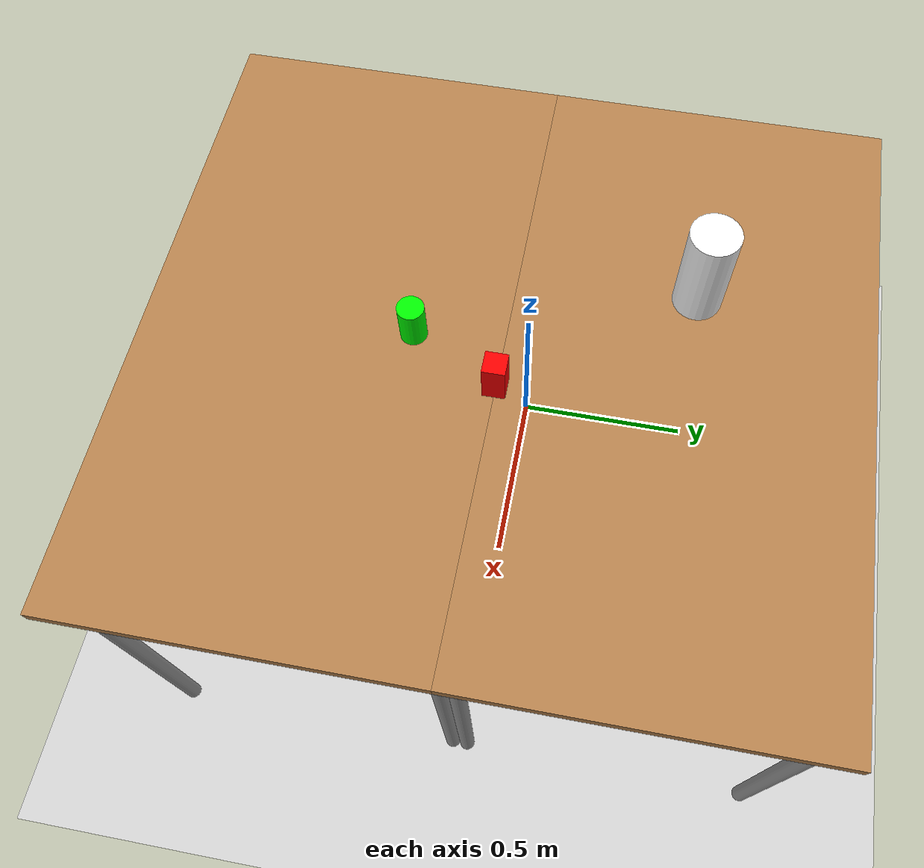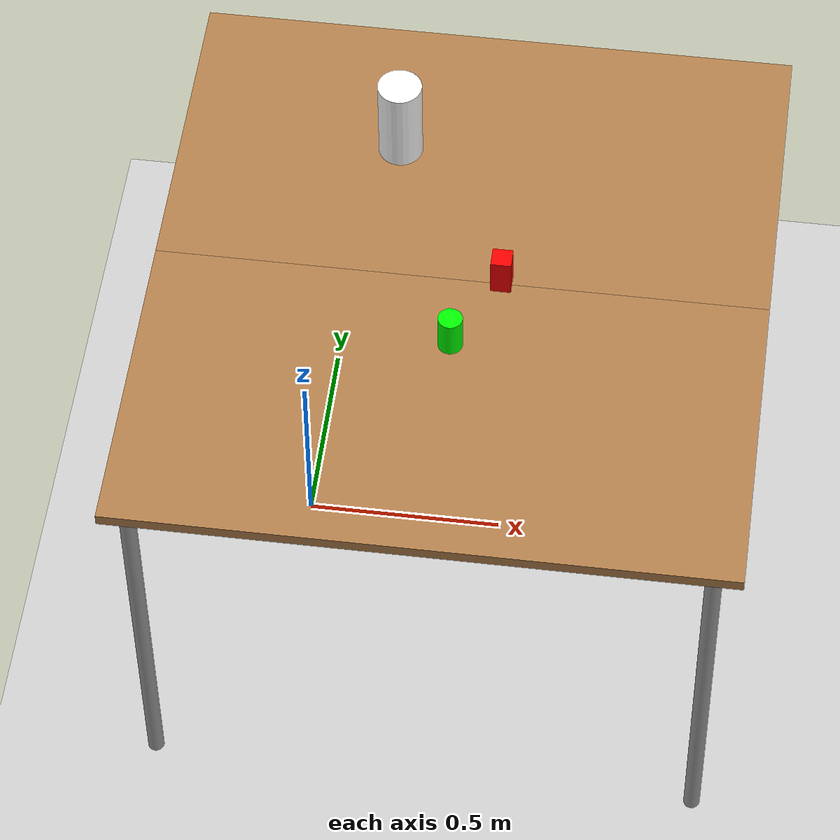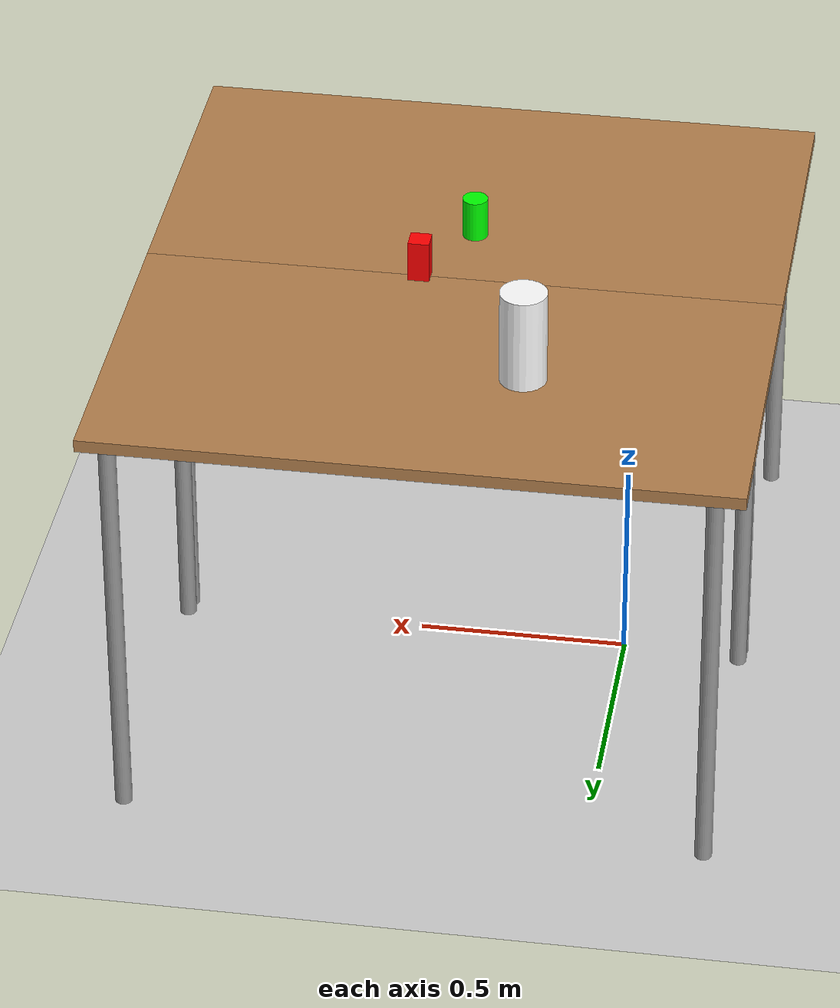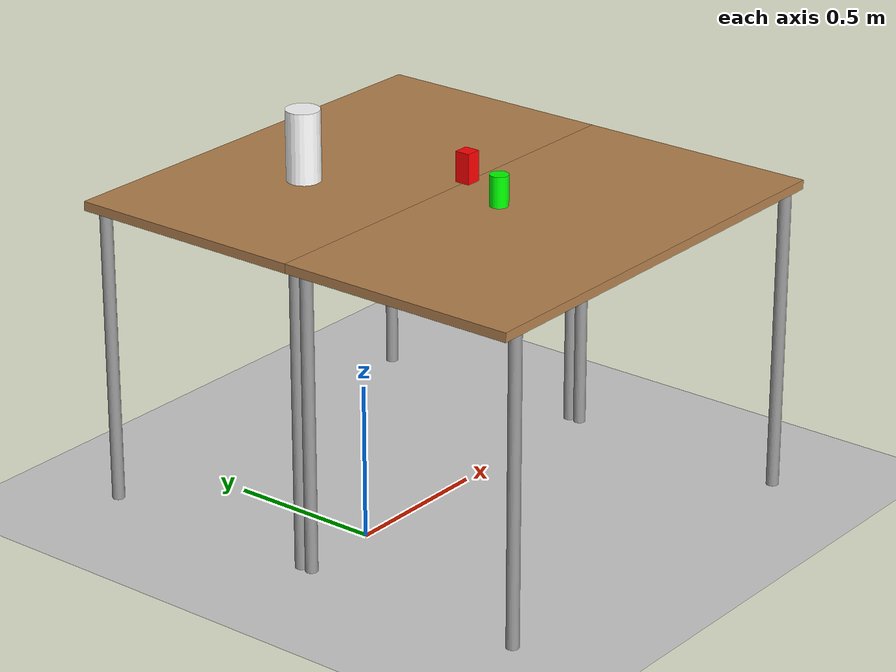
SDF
<sdf version="1.10">
 <world name="empty">
  <physics name="1ms" type="ignored">
   <max_step_size>0.001</max_step_size>
   <real_time_factor>1</real_time_factor>
   <real_time_update_rate>1000</real_time_update_rate>
  </physics>
  <plugin name="gz::sim::systems::Physics" filename="gz-sim-physics-system"/>
  <plugin name="gz::sim::systems::UserCommands" filename="gz-sim-user-commands-system"/>
  <plugin name="gz::sim::systems::SceneBroadcaster" filename="gz-sim-scene-broadcaster-system"/>
  <plugin name="gz::sim::systems::Contact" filename="gz-sim-contact-system"/>
  <plugin name="gz::sim::systems::Sensors" filename="gz-sim-sensors-system">
   <render_engine>ogre2</render_engine>
  </plugin>
  <plugin name="gz::sim::systems::Imu" filename="gz-sim-imu-system"/>
  <plugin name="gz::sim::systems::NavSat" filename="gz-sim-navsat-system"/>
  <spherical_coordinates>
   <surface_model>EARTH_WGS84</surface_model>
   <world_frame_orientation>ENU</world_frame_orientation>
   <latitude_deg>47.478949999999998</latitude_deg>
   <longitude_deg>19.057784999999999</longitude_deg>
   <elevation>0</elevation>
   <heading_deg>0</heading_deg>
  </spherical_coordinates>
  <gravity>0 0 -9.8000000000000007</gravity>
  <magnetic_field>5.5644999999999998e-06 2.2875799999999999e-05 -4.2388400000000002e-05</magnetic_field>
  <atmosphere type="adiabatic"/>
  <scene>
   <ambient>0.400000006 0.400000006 0.400000006 1</ambient>
   <background>0.699999988 0.699999988 0.699999988 1</background>
   <shadows>true</shadows>
  </scene>
  <model name="ground_plane">
   <static>true</static>
   <link name="link">
    <collision name="collision">
     <geometry><plane><normal>0 0 1</normal><size>100 100</size></plane></geometry>
     <surface><friction><ode><mu>50</mu></ode></friction></surface>
    </collision>
    <visual name="visual">
     <geometry><plane><normal>0 0 1</normal><size>100 100</size></plane></geometry>
     <material>
      <ambient>0.800000012 0.800000012 0.800000012 1</ambient>
      <diffuse>0.800000012 0.800000012 0.800000012 1</diffuse>
      <specular>0.800000012 0.800000012 0.800000012 1</specular>
     </material>
    </visual>
    <inertial>
     <mass>1</mass>
     <inertia><ixx>1</ixx><ixy>0</ixy><ixz>0</ixz><iyy>1</iyy><iyz>0</iyz><izz>1</izz></inertia>
    </inertial>
   </link>
  </model>
  <model name="red_box">
   <link name="link">
    <inertial>
     <mass>0.10000000000000001</mass>
     <inertia>
      <ixx>0.00010417</ixx>
      <ixy>0</ixy>
      <ixz>0</ixz>
      <iyy>0.00010417</iyy>
      <iyz>0</iyz>
      <izz>4.1669999999999999e-05</izz>
     </inertia>
    </inertial>
    <visual name="visual">
     <geometry><box><size>0.050000000000000003 0.050000000000000003 0.10000000000000001</size></box></geometry>
     <material>
      <script><name>Gazebo/Grey</name><uri>file://media/materials/scripts/gazebo.material</uri></script>
      <shader type="vertex"><normal_map>__default__</normal_map></shader>
      <ambient>1 0 0 1</ambient>
      <diffuse>1 0 0 1</diffuse>
      <specular>1 0 0 1</specular>
      <emissive>1 0 0 1</emissive>
     </material>
    </visual>
    <collision name="collision">
     <geometry><box><size>0.050000000000000003 0.050000000000000003 0.10000000000000001</size></box></geometry>
     <surface>
      <friction>
       <ode><mu>1</mu><mu2>1</mu2><fdir1>0 0 0</fdir1><slip1>0</slip1><slip2>0</slip2></ode>
       <torsional>
        <coefficient>1</coefficient>
        <patch_radius>0</patch_radius>
        <surface_radius>0</surface_radius>
        <use_patch_radius>true</use_patch_radius>
        <ode><slip>0</slip></ode>
       </torsional>
      </friction>
      <bounce><restitution_coefficient>0</restitution_coefficient><threshold>1000000</threshold></bounce>
      <contact>
       <collide_without_contact>false</collide_without_contact>
       <collide_without_contact_bitmask>1</collide_without_contact_bitmask>
       <collide_bitmask>1</collide_bitmask>
       <ode>
        <soft_cfm>0</soft_cfm>
        <soft_erp>0.20000000000000001</soft_erp>
        <kp>10000000000000</kp>
        <kd>1</kd>
        <max_vel>0.01</max_vel>
        <min_depth>0</min_depth>
       </ode>
       <bullet>
        <split_impulse>true</split_impulse>
        <split_impulse_penetration_threshold>-0.01</split_impulse_penetration_threshold>
        <soft_cfm>0</soft_cfm>
        <soft_erp>0.20000000000000001</soft_erp>
        <kp>10000000000000</kp>
        <kd>1</kd>
       </bullet>
      </contact>
     </surface>
    </collision>
   </link>
   <static>false</static>
   <pose>0.50000000000368494 4.2159513716924206e-12 1.0649991508963497 4.2251901669083611e-12 -1.9907850585687783e-12 1.0000099863797667e-05</pose>
  </model>
  <model name="green_cylinder">
   <link name="link">
    <inertial>
     <mass>0.10000000000000001</mass>
     <inertia>
      <ixx>0.00010582999999999999</ixx>
      <ixy>0</ixy>
      <ixz>0</ixz>
      <iyy>0.00010582999999999999</iyy>
      <iyz>0</iyz>
      <izz>4.5000000000000003e-05</izz>
     </inertia>
    </inertial>
    <visual name="visual">
     <geometry>
      <cylinder><radius>0.029999999999999999</radius><length>0.10000000000000001</length></cylinder>
     </geometry>
     <material>
      <script><name>Gazebo/Grey</name><uri>file://media/materials/scripts/gazebo.material</uri></script>
      <shader type="vertex"><normal_map>__default__</normal_map></shader>
      <ambient>0 1 0 1</ambient>
      <diffuse>0 1 0 1</diffuse>
      <specular>0 1 0 1</specular>
      <emissive>0 1 0 1</emissive>
     </material>
    </visual>
    <collision name="collision">
     <geometry>
      <cylinder><radius>0.029999999999999999</radius><length>0.10000000000000001</length></cylinder>
     </geometry>
     <surface>
      <friction>
       <ode><mu>1</mu><mu2>1</mu2><fdir1>0 0 0</fdir1><slip1>0</slip1><slip2>0</slip2></ode>
       <torsional>
        <coefficient>1</coefficient>
        <patch_radius>0</patch_radius>
        <surface_radius>0</surface_radius>
        <use_patch_radius>true</use_patch_radius>
        <ode><slip>0</slip></ode>
       </torsional>
      </friction>
      <bounce><restitution_coefficient>0</restitution_coefficient><threshold>1000000</threshold></bounce>
      <contact>
       <collide_without_contact>false</collide_without_contact>
       <collide_without_contact_bitmask>1</collide_without_contact_bitmask>
       <collide_bitmask>1</collide_bitmask>
       <ode>
        <soft_cfm>0</soft_cfm>
        <soft_erp>0.20000000000000001</soft_erp>
        <kp>10000000000000</kp>
        <kd>1</kd>
        <max_vel>0.01</max_vel>
        <min_depth>0</min_depth>
       </ode>
       <bullet>
        <split_impulse>true</split_impulse>
        <split_impulse_penetration_threshold>-0.01</split_impulse_penetration_threshold>
        <soft_cfm>0</soft_cfm>
        <soft_erp>0.20000000000000001</soft_erp>
        <kp>10000000000000</kp>
        <kd>1</kd>
       </bullet>
      </contact>
     </surface>
    </collision>
   </link>
   <static>false</static>
   <pose>0.40000000636616451 -0.20000000234418991 1.0649991543952275 -1.266548270165628e-08 -7.6318825807904231e-08 0.00018305429698276093</pose>
  </model>
  <model name="Table">
   <static>true</static>
   <link name="link">
    <collision name="surface">
     <pose>0 0 1 0 0 0</pose>
     <geometry><box><size>1.5 0.80000000000000004 0.029999999999999999</size></box></geometry>
     <surface><friction><ode><mu>0.59999999999999998</mu><mu2>0.59999999999999998</mu2></ode></friction></surface>
    </collision>
    <visual name="visual1">
     <pose>0 0 1 0 0 0</pose>
     <geometry><box><size>1.5 0.80000000000000004 0.029999999999999999</size></box></geometry>
     <material>
      <diffuse>1 1 1 1</diffuse>
      <script><uri>file://media/materials/scripts/gazebo.material</uri><name>Gazebo/Wood</name></script>
      <pbr><metal><albedo_map>model://Table/Table_Diffuse.jpg</albedo_map></metal></pbr>
     </material>
    </visual>
    <collision name="front_left_leg">
     <pose>0.68000000000000005 0.38 0.5 0 0 0</pose>
     <geometry><cylinder><radius>0.02</radius><length>1</length></cylinder></geometry>
    </collision>
    <visual name="front_left_leg">
     <pose>0.68000000000000005 0.38 0.5 0 0 0</pose>
     <geometry><cylinder><radius>0.02</radius><length>1</length></cylinder></geometry>
     <material>
      <diffuse>0.5 0.5 0.5 1</diffuse>
      <script><uri>file://media/materials/scripts/gazebo.material</uri><name>Gazebo/Grey</name></script>
     </material>
    </visual>
    <collision name="front_right_leg">
     <pose>0.68000000000000005 -0.38 0.5 0 0 0</pose>
     <geometry><cylinder><radius>0.02</radius><length>1</length></cylinder></geometry>
    </collision>
    <visual name="front_right_leg">
     <pose>0.68000000000000005 -0.38 0.5 0 0 0</pose>
     <geometry><cylinder><radius>0.02</radius><length>1</length></cylinder></geometry>
     <material>
      <diffuse>0.5 0.5 0.5 1</diffuse>
      <script><uri>file://media/materials/scripts/gazebo.material</uri><name>Gazebo/Grey</name></script>
     </material>
    </visual>
    <collision name="back_right_leg">
     <pose>-0.68000000000000005 -0.38 0.5 0 0 0</pose>
     <geometry><cylinder><radius>0.02</radius><length>1</length></cylinder></geometry>
    </collision>
    <visual name="back_right_leg">
     <pose>-0.68000000000000005 -0.38 0.5 0 0 0</pose>
     <geometry><cylinder><radius>0.02</radius><length>1</length></cylinder></geometry>
     <material>
      <diffuse>0.5 0.5 0.5 1</diffuse>
      <script><uri>file://media/materials/scripts/gazebo.material</uri><name>Gazebo/Grey</name></script>
     </material>
    </visual>
    <collision name="back_left_leg">
     <pose>-0.68000000000000005 0.38 0.5 0 0 0</pose>
     <geometry><cylinder><radius>0.02</radius><length>1</length></cylinder></geometry>
    </collision>
    <visual name="back_left_leg">
     <pose>-0.68000000000000005 0.38 0.5 0 0 0</pose>
     <geometry><cylinder><radius>0.02</radius><length>1</length></cylinder></geometry>
     <material>
      <diffuse>0.5 0.5 0.5 1</diffuse>
      <script><uri>file://media/materials/scripts/gazebo.material</uri><name>Gazebo/Grey</name></script>
     </material>
    </visual>
    <inertial>
     <mass>1</mass>
     <inertia><ixx>1</ixx><ixy>0</ixy><ixz>0</ixz><iyy>1</iyy><iyz>0</iyz><izz>1</izz></inertia>
    </inertial>
   </link>
   <pose>0.40000000000000002 0.40000000000000002 0 0 0 0</pose>
  </model>
  <model name="Table_0">
   <static>true</static>
   <link name="link">
    <collision name="surface">
     <pose>0 0 1 0 0 0</pose>
     <geometry><box><size>1.5 0.80000000000000004 0.029999999999999999</size></box></geometry>
     <surface><friction><ode><mu>0.59999999999999998</mu><mu2>0.59999999999999998</mu2></ode></friction></surface>
    </collision>
    <visual name="visual1">
     <pose>0 0 1 0 0 0</pose>
     <geometry><box><size>1.5 0.80000000000000004 0.029999999999999999</size></box></geometry>
     <material>
      <diffuse>1 1 1 1</diffuse>
      <script><uri>file://media/materials/scripts/gazebo.material</uri><name>Gazebo/Wood</name></script>
      <pbr><metal><albedo_map>model://Table/Table_Diffuse.jpg</albedo_map></metal></pbr>
     </material>
    </visual>
    <collision name="front_left_leg">
     <pose>0.68000000000000005 0.38 0.5 0 0 0</pose>
     <geometry><cylinder><radius>0.02</radius><length>1</length></cylinder></geometry>
    </collision>
    <visual name="front_left_leg">
     <pose>0.68000000000000005 0.38 0.5 0 0 0</pose>
     <geometry><cylinder><radius>0.02</radius><length>1</length></cylinder></geometry>
     <material>
      <diffuse>0.5 0.5 0.5 1</diffuse>
      <script><uri>file://media/materials/scripts/gazebo.material</uri><name>Gazebo/Grey</name></script>
     </material>
    </visual>
    <collision name="front_right_leg">
     <pose>0.68000000000000005 -0.38 0.5 0 0 0</pose>
     <geometry><cylinder><radius>0.02</radius><length>1</length></cylinder></geometry>
    </collision>
    <visual name="front_right_leg">
     <pose>0.68000000000000005 -0.38 0.5 0 0 0</pose>
     <geometry><cylinder><radius>0.02</radius><length>1</length></cylinder></geometry>
     <material>
      <diffuse>0.5 0.5 0.5 1</diffuse>
      <script><uri>file://media/materials/scripts/gazebo.material</uri><name>Gazebo/Grey</name></script>
     </material>
    </visual>
    <collision name="back_right_leg">
     <pose>-0.68000000000000005 -0.38 0.5 0 0 0</pose>
     <geometry><cylinder><radius>0.02</radius><length>1</length></cylinder></geometry>
    </collision>
    <visual name="back_right_leg">
     <pose>-0.68000000000000005 -0.38 0.5 0 0 0</pose>
     <geometry><cylinder><radius>0.02</radius><length>1</length></cylinder></geometry>
     <material>
      <diffuse>0.5 0.5 0.5 1</diffuse>
      <script><uri>file://media/materials/scripts/gazebo.material</uri><name>Gazebo/Grey</name></script>
     </material>
    </visual>
    <collision name="back_left_leg">
     <pose>-0.68000000000000005 0.38 0.5 0 0 0</pose>
     <geometry><cylinder><radius>0.02</radius><length>1</length></cylinder></geometry>
    </collision>
    <visual name="back_left_leg">
     <pose>-0.68000000000000005 0.38 0.5 0 0 0</pose>
     <geometry><cylinder><radius>0.02</radius><length>1</length></cylinder></geometry>
     <material>
      <diffuse>0.5 0.5 0.5 1</diffuse>
      <script><uri>file://media/materials/scripts/gazebo.material</uri><name>Gazebo/Grey</name></script>
     </material>
    </visual>
    <inertial>
     <mass>1</mass>
     <inertia><ixx>1</ixx><ixy>0</ixy><ixz>0</ixz><iyy>1</iyy><iyz>0</iyz><izz>1</izz></inertia>
    </inertial>
   </link>
   <pose>0.40000000000000002 -0.40000000000000002 0 0 0 0</pose>
  </model>
  <model name="beer_0">
   <link name="link">
    <pose>0 0 0.115 0 0 0</pose>
    <inertial>
     <mass>0.39000000000000001</mass>
     <inertia>
      <ixx>0.00058</ixx>
      <ixy>0</ixy>
      <ixz>0</ixz>
      <iyy>0.00058</iyy>
      <iyz>0</iyz>
      <izz>0.00019000000000000001</izz>
     </inertia>
    </inertial>
    <collision name="collision">
     <geometry><cylinder><radius>0.055</radius><length>0.23000000000000001</length></cylinder></geometry>
    </collision>
    <visual name="visual">
     <geometry><cylinder><radius>0.055</radius><length>0.23000000000000001</length></cylinder></geometry>
     <material>
      <diffuse>1 1 1 1</diffuse>
      <script>
       <uri>model://beer/materials/scripts</uri>
       <uri>model://beer/materials/textures</uri>
       <name>Beer/Diffuse</name>
      </script>
      <pbr><metal><albedo_map>model://beer/materials/textures/beer.png</albedo_map></metal></pbr>
     </material>
    </visual>
   </link>
   <pose>0.20000000298023224 0.40000000596046448 1.0149998857843019 -1.1688722425658999e-18 -6.9461382799104335e-19 8.2526562057093746e-18</pose>
   <static>false</static>
  </model>
  <light name="sun" type="directional">
   <pose>0 0 10 0 0 0</pose>
   <intensity>1</intensity>
   <direction>-0.5 0.10000000000000001 -0.90000000000000002</direction>
   <diffuse>0.800000012 0.800000012 0.800000012 1</diffuse>
   <specular>0.200000003 0.200000003 0.200000003 1</specular>
   <attenuation>
    <range>1000</range>
    <linear>0.0099999997764825821</linear>
    <constant>0.89999997615814209</constant>
    <quadratic>0.0010000000474974513</quadratic>
   </attenuation>
   <spot><inner_angle>0</inner_angle><outer_angle>0</outer_angle><falloff>0</falloff></spot>
  </light>
 </world>
</sdf>
